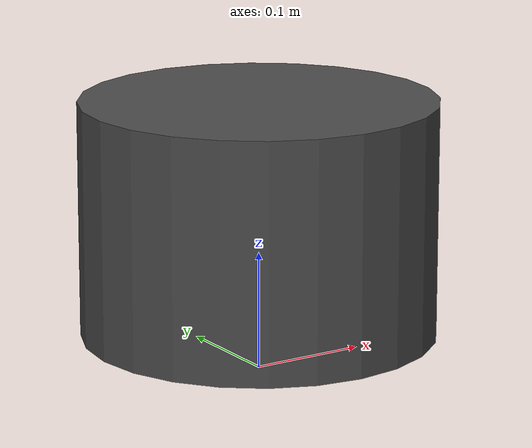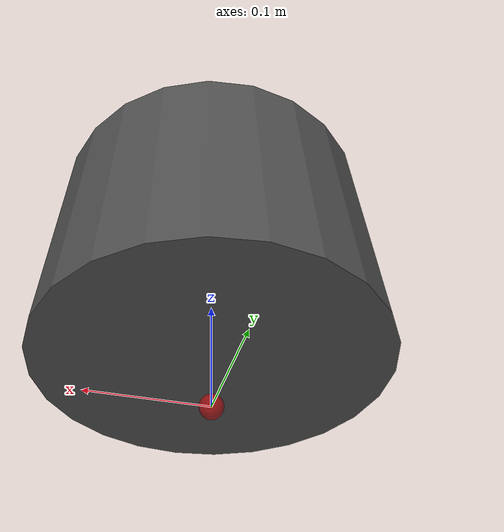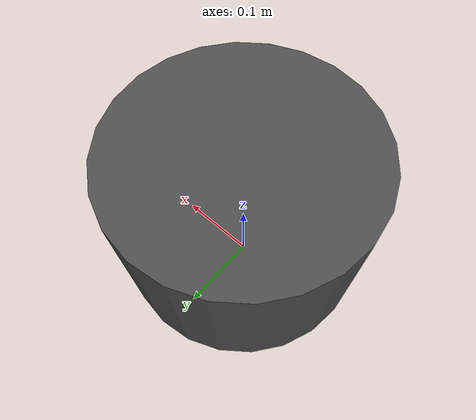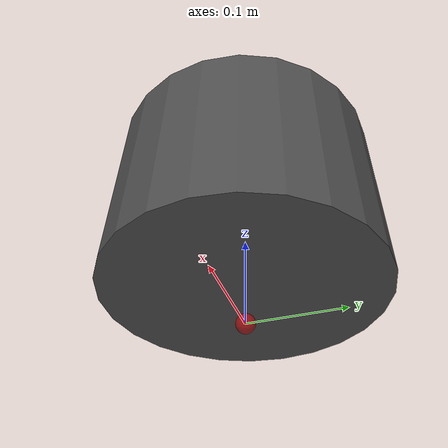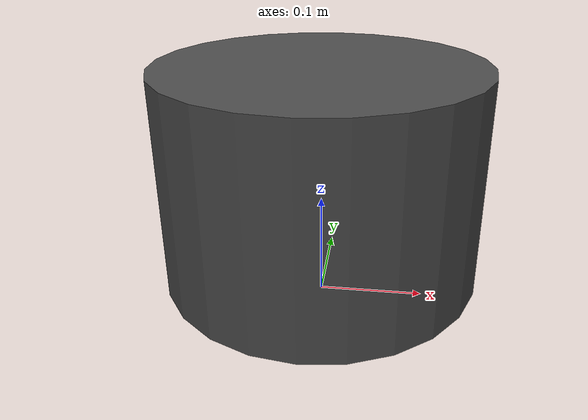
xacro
<?xml version="1.0"?>
<robot xmlns:xacro="http://www.ros.org/wiki/xacro">

  <xacro:property name="base_radius" value="0.15" />
  <xacro:property name="base_length" value="0.20" />

  <link name="base_link">
    <!-- 基础链接可视化体 -->
    <visual>
      <origin xyz="0 0 0" rpy="0 0 0" />
      <geometry>
        <cylinder radius="${base_radius}" length="${base_length}" />
      </geometry>
      <material name="base_material">
        <color rgba="0.3 0.3 0.3 0.9" />
      </material>
    </visual>

    <!-- 基础链接碰撞碰撞体 -->
    <collision>
      <origin xyz="0 0 0" rpy="0 0 0" />
      <geometry>
        <cylinder radius="${base_radius}" length="${base_length}" />
      </geometry>
    </collision>
    <!-- 基础链接惯性体 -->
    <inertial>
        <origin xyz="0 0 0" rpy="0 0 0" />
        <mass value="5.0" />
        <inertia ixx="0.0517" ixy="0" ixz="0" iyy="0.0517" iyz="0" izz="0.0562" />
      </inertial>
  </link>

  <link name="base_footprint">
    <visual>
      <origin xyz="0 0 0" rpy="0 0 0" />
      <geometry>
        <sphere radius="0.01" />
      </geometry>
      <material name="base_footprint_material">
        <color rgba="1.0 0.0 0.0 0.5" />
      </material>
    </visual>
  </link>

  <joint name="base_footprint_joint" type="fixed">
    <parent link="base_footprint" />
    <child link="base_link" />
    <origin xyz="0 0 ${base_length / 2+0.032-0.001}" rpy="0 0 0" />
  </joint>

</robot>
